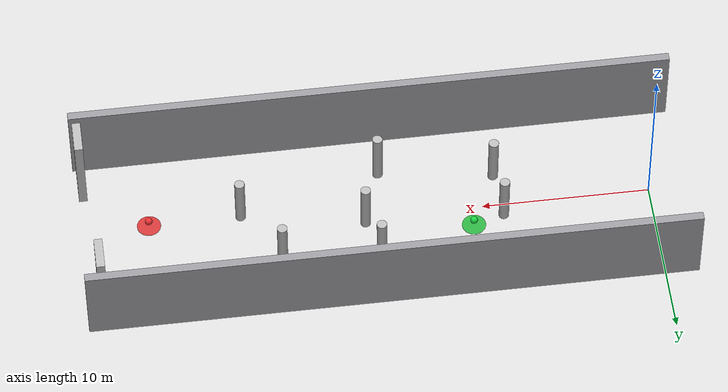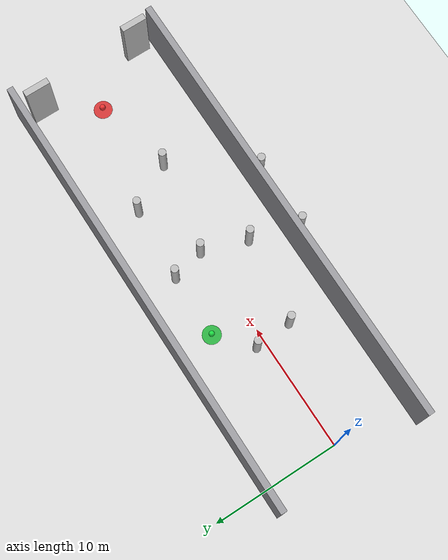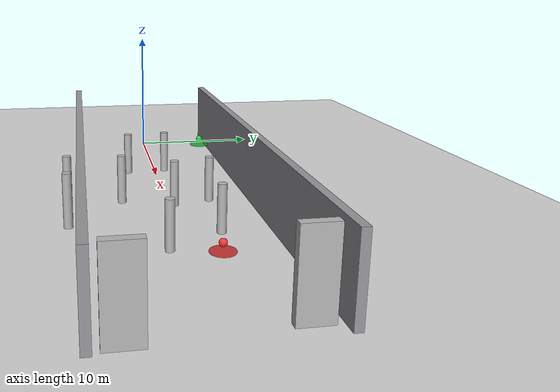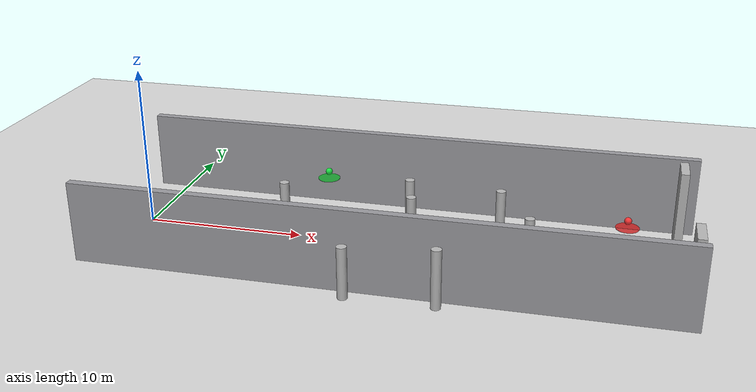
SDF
<sdf version="1.10">
 <world name="obstacle_avoidance">
  <physics type="ode">
   <max_step_size>0.0040000000000000001</max_step_size>
   <real_time_factor>1</real_time_factor>
   <real_time_update_rate>250</real_time_update_rate>
  </physics>
  <plugin name="gz::sim::systems::Physics" filename="gz-sim-physics-system"/>
  <plugin name="gz::sim::systems::UserCommands" filename="gz-sim-user-commands-system"/>
  <plugin name="gz::sim::systems::SceneBroadcaster" filename="gz-sim-scene-broadcaster-system"/>
  <plugin name="gz::sim::systems::Contact" filename="gz-sim-contact-system"/>
  <plugin name="gz::sim::systems::Imu" filename="gz-sim-imu-system"/>
  <plugin name="gz::sim::systems::AirPressure" filename="gz-sim-air-pressure-system"/>
  <plugin name="gz::sim::systems::AirSpeed" filename="gz-sim-air-speed-system"/>
  <plugin name="gz::sim::systems::ApplyLinkWrench" filename="gz-sim-apply-link-wrench-system"/>
  <plugin name="gz::sim::systems::NavSat" filename="gz-sim-navsat-system"/>
  <plugin name="gz::sim::systems::Magnetometer" filename="gz-sim-magnetometer-system"/>
  <plugin name="gz::sim::systems::Sensors" filename="gz-sim-sensors-system">
   <render_engine>ogre2</render_engine>
  </plugin>
  <plugin name="custom::OpticalFlowSystem" filename="libOpticalFlowSystem.so"/>
  <plugin name="custom::GstCameraSystem" filename="libGstCameraSystem.so"/>
  <gravity>0 0 -9.8000000000000007</gravity>
  <magnetic_field>6.0000000000000002e-06 2.3e-05 -4.1999999999999998e-05</magnetic_field>
  <atmosphere type="adiabatic"/>
  <scene>
   <grid>true</grid>
   <ambient>0.449999988 0.449999988 0.449999988 1</ambient>
   <background>0.74000001 0.769999981 0.819999993 1</background>
   <shadows>true</shadows>
  </scene>
  <spherical_coordinates>
   <surface_model>EARTH_WGS84</surface_model>
   <world_frame_orientation>ENU</world_frame_orientation>
   <latitude_deg>47.397971057728974</latitude_deg>
   <longitude_deg>8.5461637398001464</longitude_deg>
   <elevation>0</elevation>
   <heading_deg>0</heading_deg>
  </spherical_coordinates>
  <model name="ground_plane">
   <static>true</static>
   <link name="link">
    <collision name="collision">
     <geometry><plane><normal>0 0 1</normal><size>1 1</size></plane></geometry>
    </collision>
    <visual name="visual">
     <geometry><plane><normal>0 0 1</normal><size>120 120</size></plane></geometry>
     <material>
      <ambient>0.850000024 0.850000024 0.850000024 1</ambient>
      <diffuse>0.850000024 0.850000024 0.850000024 1</diffuse>
      <specular>0.400000006 0.400000006 0.400000006 1</specular>
     </material>
    </visual>
    <inertial>
     <mass>1</mass>
     <inertia><ixx>1</ixx><ixy>0</ixy><ixz>0</ixz><iyy>1</iyy><iyz>0</iyz><izz>1</izz></inertia>
    </inertial>
   </link>
  </model>
  <model name="lane_left_wall">
   <static>false</static>
   <pose>16.000709082453678 5.9453139071492913 2.4999878096969721 4.3485238296978888e-08 9.0225771277086121e-11 -0.0029249662774009219</pose>
   <link name="link">
    <collision name="collision"><geometry><box><size>36 0.5 5</size></box></geometry></collision>
    <visual name="visual">
     <geometry><box><size>36 0.5 5</size></box></geometry>
     <material>
      <ambient>0.5 0.5 0.519999981 1</ambient>
      <diffuse>0.600000024 0.600000024 0.620000005 1</diffuse>
     </material>
    </visual>
    <inertial>
     <mass>1</mass>
     <inertia><ixx>1</ixx><ixy>0</ixy><ixz>0</ixz><iyy>1</iyy><iyz>0</iyz><izz>1</izz></inertia>
    </inertial>
   </link>
  </model>
  <model name="lane_right_wall">
   <static>false</static>
   <pose>16.000034893159931 -6.0027765016829369 2.4999872571535362 3.7656652722942262e-08 1.1025071628537408e-12 -0.00015395044681306788</pose>
   <link name="link">
    <collision name="collision"><geometry><box><size>36 0.5 5</size></box></geometry></collision>
    <visual name="visual">
     <geometry><box><size>36 0.5 5</size></box></geometry>
     <material>
      <ambient>0.5 0.5 0.519999981 1</ambient>
      <diffuse>0.600000024 0.600000024 0.620000005 1</diffuse>
     </material>
    </visual>
    <inertial>
     <mass>1</mass>
     <inertia><ixx>1</ixx><ixy>0</ixy><ixz>0</ixz><iyy>1</iyy><iyz>0</iyz><izz>1</izz></inertia>
    </inertial>
   </link>
  </model>
  <model name="block_01">
   <static>false</static>
   <pose>9.0727052688598633 -2.1968300342559814 1.5999992089195469 7.199954055551435e-18 2.1707382247448535e-16 2.1998693380031915e-18</pose>
   <link name="link">
    <collision name="collision">
     <geometry>
      <cylinder><radius>0.29999999999999999</radius><length>3.2000000000000002</length></cylinder>
     </geometry>
    </collision>
    <visual name="visual">
     <geometry>
      <cylinder><radius>0.29999999999999999</radius><length>3.2000000000000002</length></cylinder>
     </geometry>
    </visual>
    <inertial>
     <mass>1</mass>
     <inertia><ixx>1</ixx><ixy>0</ixy><ixz>0</ixz><iyy>1</iyy><iyz>0</iyz><izz>1</izz></inertia>
    </inertial>
   </link>
  </model>
  <model name="block_02">
   <static>false</static>
   <pose>17.058052062988281 0.33250299096107483 1.5999992089195469 1.2828262473798454e-17 4.5167730557303708e-17 2.9142136602402198e-19</pose>
   <link name="link">
    <collision name="collision">
     <geometry>
      <cylinder><radius>0.29999999999999999</radius><length>3.2000000000000002</length></cylinder>
     </geometry>
    </collision>
    <visual name="visual">
     <geometry>
      <cylinder><radius>0.29999999999999999</radius><length>3.2000000000000002</length></cylinder>
     </geometry>
    </visual>
    <inertial>
     <mass>1</mass>
     <inertia><ixx>1</ixx><ixy>0</ixy><ixz>0</ixz><iyy>1</iyy><iyz>0</iyz><izz>1</izz></inertia>
    </inertial>
   </link>
  </model>
  <model name="block_03">
   <static>false</static>
   <pose>8.8421401977539062 0.77008962631225586 1.5999991184346627 -8.551995925956504e-18 7.0452536864854852e-16 1.4341977861691221e-18</pose>
   <link name="link">
    <collision name="collision">
     <geometry>
      <cylinder><radius>0.29999999999999999</radius><length>3.2000000000000002</length></cylinder>
     </geometry>
    </collision>
    <visual name="visual">
     <geometry>
      <cylinder><radius>0.29999999999999999</radius><length>3.2000000000000002</length></cylinder>
     </geometry>
    </visual>
    <inertial>
     <mass>1</mass>
     <inertia><ixx>1</ixx><ixy>0</ixy><ixz>0</ixz><iyy>1</iyy><iyz>0</iyz><izz>1</izz></inertia>
    </inertial>
   </link>
  </model>
  <model name="block_04">
   <static>false</static>
   <pose>14.750100135803223 -6.9767565727233887 1.5999992089195469 -1.986418425279222e-16 1.5427745075824404e-16 -2.2593311461309816e-19</pose>
   <link name="link">
    <collision name="collision">
     <geometry>
      <cylinder><radius>0.29999999999999999</radius><length>3.2000000000000002</length></cylinder>
     </geometry>
    </collision>
    <visual name="visual">
     <geometry>
      <cylinder><radius>0.29999999999999999</radius><length>3.2000000000000002</length></cylinder>
     </geometry>
    </visual>
    <inertial>
     <mass>1</mass>
     <inertia><ixx>1</ixx><ixy>0</ixy><ixz>0</ixz><iyy>1</iyy><iyz>0</iyz><izz>1</izz></inertia>
    </inertial>
   </link>
  </model>
  <model name="block_05">
   <static>false</static>
   <pose>22.237615578780684 2.4806284729889652 1.5999999986825588 2.172468830936165e-07 -1.0442863242283716e-09 4.261980456041637e-06</pose>
   <link name="link">
    <collision name="collision">
     <geometry>
      <cylinder><radius>0.29999999999999999</radius><length>3.2000000000000002</length></cylinder>
     </geometry>
    </collision>
    <visual name="visual">
     <geometry>
      <cylinder><radius>0.29999999999999999</radius><length>3.2000000000000002</length></cylinder>
     </geometry>
    </visual>
    <inertial>
     <mass>1</mass>
     <inertia><ixx>1</ixx><ixy>0</ixy><ixz>0</ixz><iyy>1</iyy><iyz>0</iyz><izz>1</izz></inertia>
    </inertial>
   </link>
  </model>
  <model name="block_06">
   <static>false</static>
   <pose>16.418100357055664 2.9140443801879883 1.5999991184346627 -8.6739054080571118e-17 1.1929048383289271e-16 -2.2546390100174447e-18</pose>
   <link name="link">
    <collision name="collision">
     <geometry>
      <cylinder><radius>0.29999999999999999</radius><length>3.2000000000000002</length></cylinder>
     </geometry>
    </collision>
    <visual name="visual">
     <geometry>
      <cylinder><radius>0.29999999999999999</radius><length>3.2000000000000002</length></cylinder>
     </geometry>
    </visual>
    <inertial>
     <mass>1</mass>
     <inertia><ixx>1</ixx><ixy>0</ixy><ixz>0</ixz><iyy>1</iyy><iyz>0</iyz><izz>1</izz></inertia>
    </inertial>
   </link>
  </model>
  <model name="cyl_01">
   <static>false</static>
   <pose>24.370199203491211 -1.0635306835174561 1.5999992089211388 4.031590825012347e-17 1.5810434703805373e-17 -3.0762895609435989e-19</pose>
   <link name="link">
    <collision name="collision">
     <geometry>
      <cylinder><radius>0.29999999999999999</radius><length>3.2000000000000002</length></cylinder>
     </geometry>
    </collision>
    <visual name="visual">
     <geometry>
      <cylinder><radius>0.29999999999999999</radius><length>3.2000000000000002</length></cylinder>
     </geometry>
    </visual>
    <inertial>
     <mass>1</mass>
     <inertia><ixx>1</ixx><ixy>0</ixy><ixz>0</ixz><iyy>1</iyy><iyz>0</iyz><izz>1</izz></inertia>
    </inertial>
   </link>
  </model>
  <model name="cyl_02">
   <static>false</static>
   <pose>20 -6.8825201988220215 1.7999999525764545 -5.9956044407570622e-18 -7.2255734475861734e-18 9.0017156991867858e-20</pose>
   <link name="link">
    <collision name="collision">
     <geometry>
      <cylinder><radius>0.29999999999999999</radius><length>3.6000000000000001</length></cylinder>
     </geometry>
    </collision>
    <visual name="visual">
     <geometry>
      <cylinder><radius>0.29999999999999999</radius><length>3.6000000000000001</length></cylinder>
     </geometry>
    </visual>
    <inertial>
     <mass>1</mass>
     <inertia><ixx>1</ixx><ixy>0</ixy><ixz>0</ixz><iyy>1</iyy><iyz>0</iyz><izz>1</izz></inertia>
    </inertial>
   </link>
  </model>
  <model name="cyl_03">
   <static>false</static>
   <pose>15.905599594116211 -3.2042236328125 1.6999998670142704 -2.0991309205656168e-17 1.7686850009559435e-18 2.651756230948819e-19</pose>
   <link name="link">
    <collision name="collision">
     <geometry>
      <cylinder><radius>0.29999999999999999</radius><length>3.3999999999999999</length></cylinder>
     </geometry>
    </collision>
    <visual name="visual">
     <geometry>
      <cylinder><radius>0.29999999999999999</radius><length>3.3999999999999999</length></cylinder>
     </geometry>
    </visual>
    <inertial>
     <mass>1</mass>
     <inertia><ixx>1</ixx><ixy>0</ixy><ixz>0</ixz><iyy>1</iyy><iyz>0</iyz><izz>1</izz></inertia>
    </inertial>
   </link>
  </model>
  <model name="start_marker">
   <static>true</static>
   <pose>11.02363109588623 3.2513298988342285 2.6859300136566162 0 0 0</pose>
   <link name="link">
    <gravity>false</gravity>
    <kinematic>true</kinematic>
    <visual name="base_ring">
     <geometry>
      <cylinder><radius>0.69999999999999996</radius><length>0.040000000000000001</length></cylinder>
     </geometry>
     <material>
      <ambient>0.100000001 0.699999988 0.200000003 0.850000024</ambient>
      <diffuse>0.100000001 0.699999988 0.200000003 0.850000024</diffuse>
      <specular>0.200000003 0.200000003 0.200000003 1</specular>
     </material>
    </visual>
    <visual name="center_sphere">
     <pose>0 0 0.45000000000000001 0 0 0</pose>
     <geometry><sphere><radius>0.22</radius></sphere></geometry>
     <material>
      <ambient>0.100000001 0.850000024 0.25 1</ambient>
      <diffuse>0.100000001 0.850000024 0.25 1</diffuse>
      <specular>0.300000012 0.300000012 0.300000012 1</specular>
     </material>
    </visual>
    <inertial>
     <mass>1</mass>
     <inertia><ixx>1</ixx><ixy>0</ixy><ixz>0</ixz><iyy>1</iyy><iyz>0</iyz><izz>1</izz></inertia>
    </inertial>
   </link>
  </model>
  <model name="goal_marker">
   <static>true</static>
   <pose>29.903999328613281 0.69970601797103882 2.3780899047851562 0 0 0</pose>
   <link name="link">
    <gravity>false</gravity>
    <kinematic>true</kinematic>
    <visual name="base_ring">
     <geometry>
      <cylinder><radius>0.69999999999999996</radius><length>0.040000000000000001</length></cylinder>
     </geometry>
     <material>
      <ambient>0.850000024 0.150000006 0.150000006 0.850000024</ambient>
      <diffuse>0.850000024 0.150000006 0.150000006 0.850000024</diffuse>
      <specular>0.200000003 0.200000003 0.200000003 1</specular>
     </material>
    </visual>
    <visual name="center_sphere">
     <pose>0 0 0.45000000000000001 0 0 0</pose>
     <geometry><sphere><radius>0.22</radius></sphere></geometry>
     <material>
      <ambient>0.949999988 0.200000003 0.200000003 1</ambient>
      <diffuse>0.949999988 0.200000003 0.200000003 1</diffuse>
      <specular>0.300000012 0.300000012 0.300000012 1</specular>
     </material>
    </visual>
    <inertial>
     <mass>1</mass>
     <inertia><ixx>1</ixx><ixy>0</ixy><ixz>0</ixz><iyy>1</iyy><iyz>0</iyz><izz>1</izz></inertia>
    </inertial>
   </link>
  </model>
  <model name="goal_gate_left">
   <static>false</static>
   <pose>33 4.2348775863647461 2.4999999991915041 -4.9672860941994661e-20 -1.040579827904805e-20 4.639191721720037e-21</pose>
   <link name="link">
    <collision name="collision"><geometry><box><size>0.5 2 5</size></box></geometry></collision>
    <visual name="visual"><geometry><box><size>0.5 2 5</size></box></geometry></visual>
    <inertial>
     <mass>1</mass>
     <inertia><ixx>1</ixx><ixy>0</ixy><ixz>0</ixz><iyy>1</iyy><iyz>0</iyz><izz>1</izz></inertia>
    </inertial>
   </link>
  </model>
  <model name="goal_gate_right">
   <static>false</static>
   <pose>33.551300048220718 -4.4187892171584684 2.499999073184441 -1.0461011318624985e-07 3.2655675779829825e-12 -5.4295899468334141e-08</pose>
   <link name="link">
    <collision name="collision"><geometry><box><size>0.5 2 5</size></box></geometry></collision>
    <visual name="visual"><geometry><box><size>0.5 2 5</size></box></geometry></visual>
    <inertial>
     <mass>1</mass>
     <inertia><ixx>1</ixx><ixy>0</ixy><ixz>0</ixz><iyy>1</iyy><iyz>0</iyz><izz>1</izz></inertia>
    </inertial>
   </link>
  </model>
  <light name="sunUTC" type="directional">
   <pose>0 0 500 0 0 0</pose>
   <intensity>1</intensity>
   <direction>0.001 0.625 -0.78000000000000003</direction>
   <diffuse>0.899999976 0.899999976 0.899999976 1</diffuse>
   <specular>0.25 0.25 0.25 1</specular>
   <attenuation><range>2000</range><linear>0</linear><constant>1</constant><quadratic>0</quadratic></attenuation>
   <spot><inner_angle>0</inner_angle><outer_angle>0</outer_angle><falloff>0</falloff></spot>
  </light>
 </world>
</sdf>
